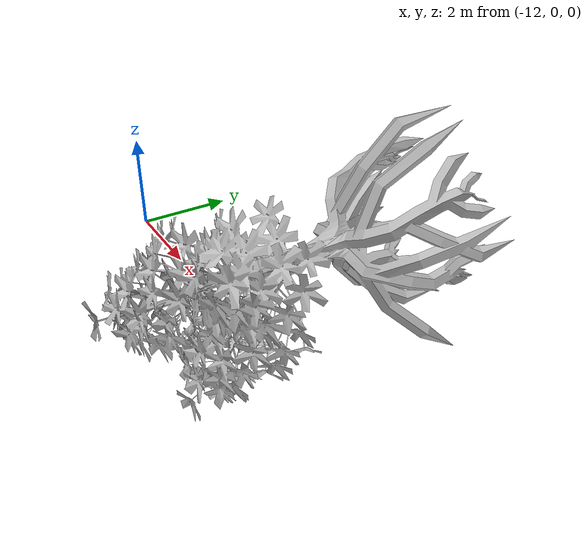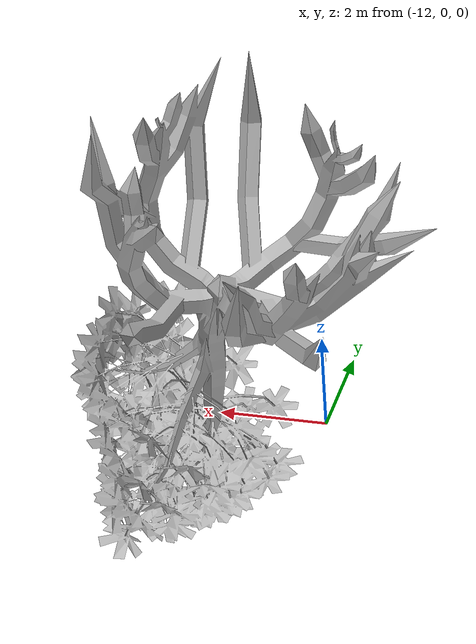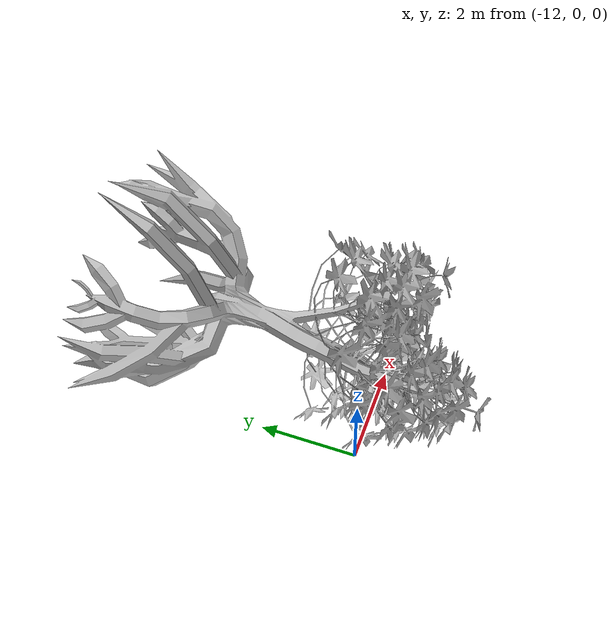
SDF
<?xml version="1.0" ?>
<sdf version="1.10">
  <model name="mangrove_10_9m">
    <pose>0 0 0 0 0 0</pose>
    <static>true</static>
    <link name="visual_only_link">
      <!-- Terrain at (14, 7) is approximately 0.03 m above world zero. -->
      <pose>-9.120 5.952 -0.20 1.5708 0 0</pose>
      <visual name="imported_mangrove_visual"><geometry><mesh><uri>model://mangrove_imported/meshes/Mangrovetree.glb</uri><scale>3.2 3.2 3.2</scale></mesh></geometry></visual>
    </link>
    <!-- The converted GLB mesh is the authoritative visual and collision geometry. -->
    <!-- A mesh collision is used so Gazebo physics and LiDAR can detect the tree shape. -->
    <link name="glb_collision_link">
      <pose>0 0 0.550 0 0 0</pose>
      <collision name="glb_mesh_collision">
        <geometry><cylinder><radius>0.9</radius><length>3.8</length></cylinder></geometry>
      </collision>
    </link>
  </model>
</sdf>
